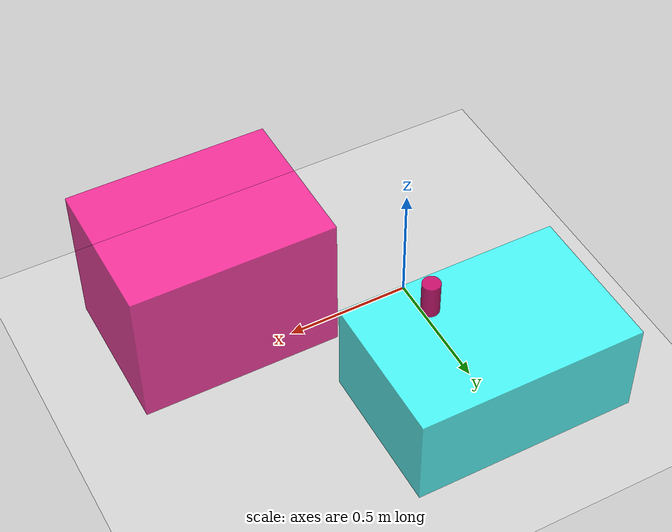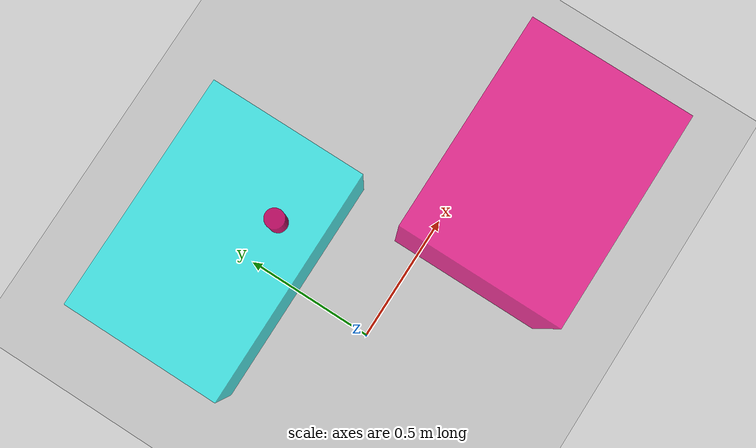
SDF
<sdf version='1.10'>
  <world name='Mobile'>
    <physics name='1ms' type='ignored'>
      <max_step_size>0.001</max_step_size>
      <real_time_factor>1</real_time_factor>
      <real_time_update_rate>1000</real_time_update_rate>
    </physics>
    <plugin name='gz::sim::systems::Physics' filename='gz-sim-physics-system'/>
    <plugin name='gz::sim::systems::UserCommands' filename='gz-sim-user-commands-system'/>
    <plugin name='gz::sim::systems::SceneBroadcaster' filename='gz-sim-scene-broadcaster-system'/>
    <plugin name='gz::sim::systems::Contact' filename='gz-sim-contact-system'/>
    <plugin name='gz::sim::systems::ForceTorque' filename='gz-sim-forcetorque-system'/>
    <gravity>0.00002 0.00003 -9.78265</gravity>
    <magnetic_field>1.83535e-05 -7.7993e-06 -1.46974e-05</magnetic_field>
    <atmosphere type='adiabatic'/>
    <scene>
      <ambient>0.40 0.40 0.40 1</ambient>
      <background>0.70 0.69 0.69 1</background>
      <shadows>false</shadows>
    </scene>
    <model name='ground_plane'>
      <static>true</static>
      <link name='link'>
        <collision name='collision'>
          <geometry>
            <plane>
              <normal>0 0 1</normal>
              <size>100 100</size>
            </plane>
          </geometry>
          <surface>
            <friction>
              <ode/>
            </friction>
            <bounce/>
            <contact/>
          </surface>
        </collision>
        <visual name='visual'>
          <geometry>
            <plane>
              <normal>0 0 1</normal>
              <size>100 100</size>
            </plane>
          </geometry>
          <material>
            <ambient>0.800000012 0.800000012 0.800000012 1</ambient>
            <diffuse>0.800000012 0.800000012 0.800000012 1</diffuse>
            <specular>0.800000012 0.800000012 0.800000012 1</specular>
          </material>
        </visual>
        <pose>0 0 0 0 0 0</pose>
        <inertial>
          <pose>0 0 0 0 0 0</pose>
          <mass>1</mass>
          <inertia>
            <ixx>1</ixx>
            <ixy>0</ixy>
            <ixz>0</ixz>
            <iyy>1</iyy>
            <iyz>0</iyz>
            <izz>1</izz>
          </inertia>
        </inertial>
        <enable_wind>false</enable_wind>
      </link>
      <pose>0 0 0 0 0 0</pose>
      <self_collide>false</self_collide>
    </model>
    <model name='mobile'>
      <static>false</static>
      <pose>0.75 -0.20 0.30 0 0 0</pose>
      <link name='mobile_link'>
        <inertial>
          <inertia>
            <ixx>0.300</ixx>
            <ixy>0</ixy>
            <ixz>0</ixz>
            <iyy>0.41667</iyy>
            <iyz>0</iyz>
            <izz>0.41667</izz>
          </inertia>
          <mass>5.0</mass>
          <pose>0 0 0 0 0 0</pose>
        </inertial>
        <collision name='mobile_collision'>
          <geometry>
            <box>
              <size>0.80 0.60 0.60</size>
            </box>
          </geometry>
        </collision>
        <visual name='mobile_visual'>
          <geometry>
            <box>
              <size>0.80 0.60 0.60</size>
            </box>
          </geometry>
          <material>
            <ambient>1.00 0.078 0.576 1.0</ambient>
            <diffuse>1.00 0.078 0.576 0.80</diffuse>
          </material>
        </visual>
        <pose>0 0 0 0 0 0</pose>
      </link>
    </model>
    <model name='rigid_table'>
      <pose>0.0 0.60 0.20 0 0 0</pose>
      <link name='rigid_table_link'>
        <inertial>
          <inertia>
            <ixx>1</ixx>
            <ixy>0</ixy>
            <ixz>0</ixz>
            <iyy>1</iyy>
            <iyz>0</iyz>
            <izz>1</izz>
          </inertia>
          <mass>1</mass>
          <pose>0 0 0 0 0 0</pose>
        </inertial>
        <collision name='rigid_table_collision'>
          <geometry>
            <box>
              <size>0.90 0.60 0.40</size>
            </box>
          </geometry>
          <surface>
            <friction>
              <ode/>
            </friction>
            <bounce/>
            <contact/>
          </surface>
        </collision>
        <visual name='rigid_table_visual'>
          <geometry>
            <box>
              <size>0.90 0.60 0.40</size>
            </box>
          </geometry>
          <material>
            <ambient>0.20 1.0 1.0 1.0</ambient>
            <diffuse>0.20 1.0 1.0 0.80</diffuse>
            <specular>1 1 1 1</specular>
          </material>
        </visual>
        <pose>0 0 0 0 0 0</pose>
      </link>
      <static>true</static>
    </model>
    <model name='free_object'>
      <pose>0.16 0.45 0.471 0 0 0</pose>
      <link name='free_object_link'>
        <inertial>
          <inertia>
            <ixx>7.100e-4</ixx>
            <ixy>0</ixy>
            <ixz>0</ixz>
            <iyy>7.100e-4</iyy>
            <iyz>0</iyz>
            <izz>2.200e-4</izz>
          </inertia>
          <mass>0.365</mass>
          <pose>0 0 0 0 0 0</pose>
        </inertial>
        <collision name='free_object_collision'>
          <geometry>
            <cylinder>
              <radius>0.035</radius>
              <length>0.14</length>
            </cylinder>
          </geometry>
          <surface>
            <friction>
              <ode/>
            </friction>
            <bounce/>
            <contact/>
          </surface>
        </collision>
        <visual name='free_object_visual'>
          <geometry>
            <cylinder>
              <radius>0.035</radius>
              <length>0.14</length>
            </cylinder>
          </geometry>
          <material>
            <ambient>0.80 0 0.40 1.0</ambient>
            <diffuse>0.80 0 0.40 0.88</diffuse>
            <specular>1 1 1 1</specular>
          </material>
        </visual>
        <pose>0 0 0 0 0 0</pose>
        <enable_wind>false</enable_wind>
      </link>
      <static>false</static>
    </model>
    <light name='sun' type='directional'>
      <pose>0 0 10 0 0 0</pose>
      <cast_shadows>false</cast_shadows>
      <intensity>1</intensity>
      <direction>0.5 0.10 -0.90</direction>
      <diffuse>0.80 0.80 0.80 1</diffuse>
      <specular>0.200 0.200 0.200 1</specular>
      <attenuation>
        <range>1000</range>
        <linear>0.01</linear>
        <constant>0.900</constant>
        <quadratic>0.001</quadratic>
      </attenuation>
      <spot>
        <inner_angle>0</inner_angle>
        <outer_angle>0</outer_angle>
        <falloff>0</falloff>
      </spot>
    </light>
  </world>
</sdf>
